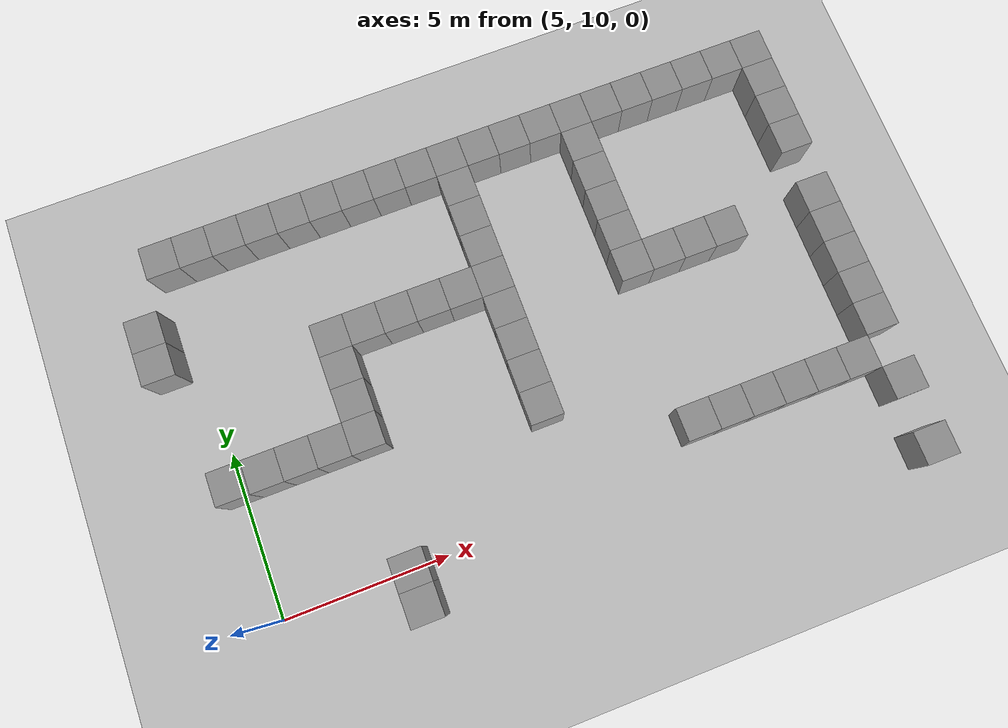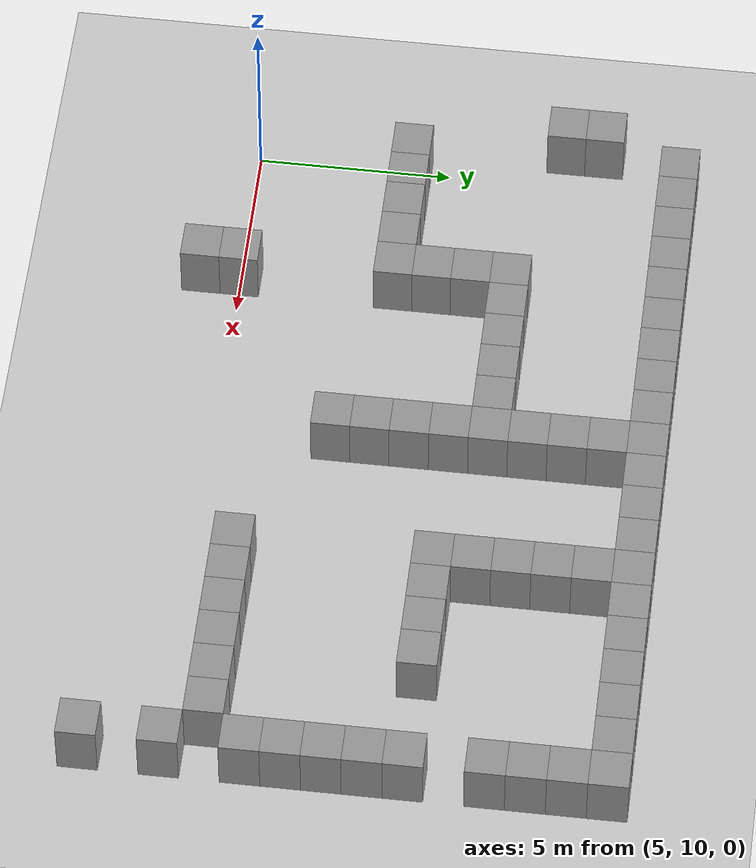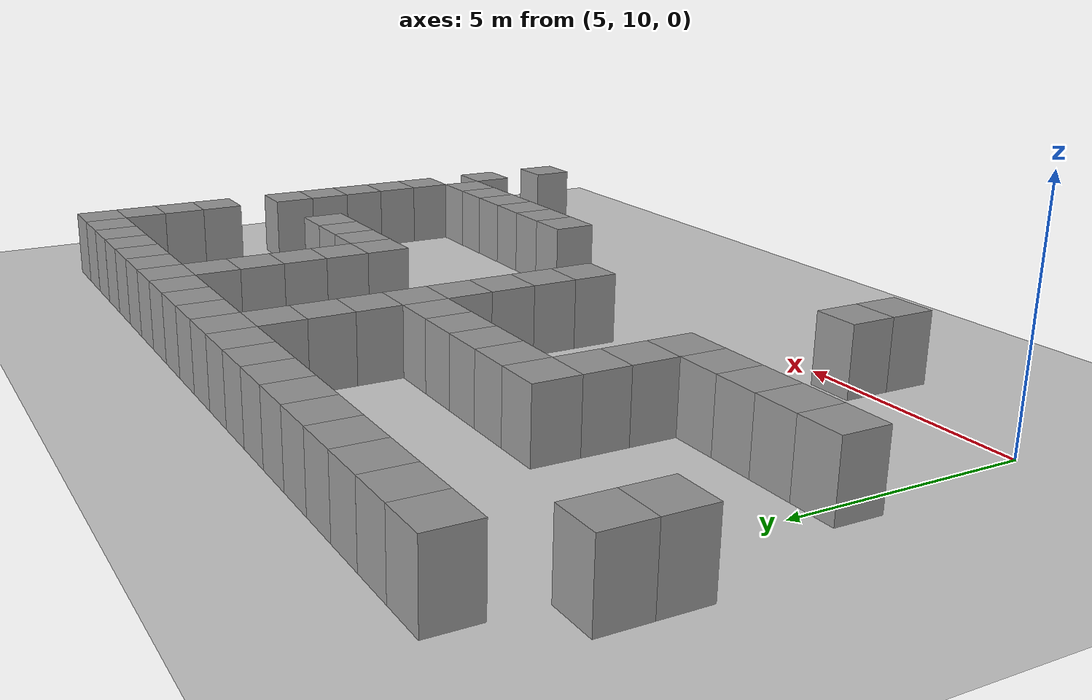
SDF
<sdf version="1.4">
 <world name="default">
  <model name="ground_plane">
   <static>1</static>
   <link name="link">
    <collision name="collision">
     <geometry><plane><normal>0 0 1</normal><size>100 100</size></plane></geometry>
     <surface><friction><ode><mu>100</mu><mu2>50</mu2></ode></friction></surface>
    </collision>
    <visual name="visual">
     <cast_shadows>0</cast_shadows>
     <geometry><plane><normal>0 0 1</normal><size>100 100</size></plane></geometry>
     <material>
      <script><uri>file://media/materials/scripts/gazebo.material</uri><name>Gazebo/Grey</name></script>
     </material>
    </visual>
    <velocity_decay><linear>0</linear><angular>0</angular></velocity_decay>
   </link>
  </model>
  <model name="unit_box_55">
   <pose>9 9.00001 0.5 0 0 -1e-06</pose>
   <static>1</static>
   <link name="link">
    <inertial>
     <mass>1</mass>
     <inertia><ixx>1</ixx><ixy>0</ixy><ixz>0</ixz><iyy>1</iyy><iyz>0</iyz><izz>1</izz></inertia>
    </inertial>
    <collision name="collision"><geometry><box><size>1 1 2</size></box></geometry></collision>
    <visual name="visual">
     <geometry><box><size>1 1 2</size></box></geometry>
     <material>
      <script><uri>file://media/materials/scripts/gazebo.material</uri><name>Gazebo/Grey</name></script>
     </material>
    </visual>
    <velocity_decay><linear>0</linear><angular>0</angular></velocity_decay>
   </link>
   <static>0</static>
  </model>
  <model name="unit_box_56">
   <pose>9 10 0.5 0 0 -2e-06</pose>
   <static>1</static>
   <link name="link">
    <inertial>
     <mass>1</mass>
     <inertia><ixx>1</ixx><ixy>0</ixy><ixz>0</ixz><iyy>1</iyy><iyz>0</iyz><izz>1</izz></inertia>
    </inertial>
    <collision name="collision"><geometry><box><size>1 1 2</size></box></geometry></collision>
    <visual name="visual">
     <geometry><box><size>1 1 2</size></box></geometry>
     <material>
      <script><uri>file://media/materials/scripts/gazebo.material</uri><name>Gazebo/Grey</name></script>
     </material>
    </visual>
    <velocity_decay><linear>0</linear><angular>0</angular></velocity_decay>
   </link>
   <static>0</static>
  </model>
  <model name="unit_box_66">
   <pose>5 14 0.5 0 -0 0</pose>
   <static>1</static>
   <link name="link">
    <inertial>
     <mass>1</mass>
     <inertia><ixx>1</ixx><ixy>0</ixy><ixz>0</ixz><iyy>1</iyy><iyz>0</iyz><izz>1</izz></inertia>
    </inertial>
    <collision name="collision"><geometry><box><size>1 1 2</size></box></geometry></collision>
    <visual name="visual">
     <geometry><box><size>1 1 2</size></box></geometry>
     <material>
      <script><uri>file://media/materials/scripts/gazebo.material</uri><name>Gazebo/Grey</name></script>
     </material>
    </visual>
    <velocity_decay><linear>0</linear><angular>0</angular></velocity_decay>
   </link>
   <static>0</static>
  </model>
  <model name="unit_box_86">
   <pose>6 14 0.5 0 -0 1e-06</pose>
   <static>1</static>
   <link name="link">
    <inertial>
     <mass>1</mass>
     <inertia><ixx>1</ixx><ixy>0</ixy><ixz>0</ixz><iyy>1</iyy><iyz>0</iyz><izz>1</izz></inertia>
    </inertial>
    <collision name="collision"><geometry><box><size>1 1 2</size></box></geometry></collision>
    <visual name="visual">
     <geometry><box><size>1 1 2</size></box></geometry>
     <material>
      <script><uri>file://media/materials/scripts/gazebo.material</uri><name>Gazebo/Grey</name></script>
     </material>
    </visual>
    <velocity_decay><linear>0</linear><angular>0</angular></velocity_decay>
   </link>
   <static>0</static>
  </model>
  <model name="unit_box_87">
   <pose>7 14 0.5 0 -0 1e-06</pose>
   <static>1</static>
   <link name="link">
    <inertial>
     <mass>1</mass>
     <inertia><ixx>1</ixx><ixy>0</ixy><ixz>0</ixz><iyy>1</iyy><iyz>0</iyz><izz>1</izz></inertia>
    </inertial>
    <collision name="collision"><geometry><box><size>1 1 2</size></box></geometry></collision>
    <visual name="visual">
     <geometry><box><size>1 1 2</size></box></geometry>
     <material>
      <script><uri>file://media/materials/scripts/gazebo.material</uri><name>Gazebo/Grey</name></script>
     </material>
    </visual>
    <velocity_decay><linear>0</linear><angular>0</angular></velocity_decay>
   </link>
   <static>0</static>
  </model>
  <model name="unit_box_88">
   <pose>8 14 0.5 0 -0 0</pose>
   <static>1</static>
   <link name="link">
    <inertial>
     <mass>1</mass>
     <inertia><ixx>1</ixx><ixy>0</ixy><ixz>0</ixz><iyy>1</iyy><iyz>0</iyz><izz>1</izz></inertia>
    </inertial>
    <collision name="collision"><geometry><box><size>1 1 2</size></box></geometry></collision>
    <visual name="visual">
     <geometry><box><size>1 1 2</size></box></geometry>
     <material>
      <script><uri>file://media/materials/scripts/gazebo.material</uri><name>Gazebo/Grey</name></script>
     </material>
    </visual>
    <velocity_decay><linear>0</linear><angular>0</angular></velocity_decay>
   </link>
   <static>0</static>
  </model>
  <model name="unit_box_89">
   <pose>9 14 0.5 0 -0 0</pose>
   <static>1</static>
   <link name="link">
    <inertial>
     <mass>1</mass>
     <inertia><ixx>1</ixx><ixy>0</ixy><ixz>0</ixz><iyy>1</iyy><iyz>0</iyz><izz>1</izz></inertia>
    </inertial>
    <collision name="collision"><geometry><box><size>1 1 2</size></box></geometry></collision>
    <visual name="visual">
     <geometry><box><size>1 1 2</size></box></geometry>
     <material>
      <script><uri>file://media/materials/scripts/gazebo.material</uri><name>Gazebo/Grey</name></script>
     </material>
    </visual>
    <velocity_decay><linear>0</linear><angular>0</angular></velocity_decay>
   </link>
   <static>0</static>
  </model>
  <model name="unit_box_93">
   <pose>9.00001 15 0.5 0 0 -4e-06</pose>
   <static>1</static>
   <link name="link">
    <inertial>
     <mass>1</mass>
     <inertia><ixx>1</ixx><ixy>0</ixy><ixz>0</ixz><iyy>1</iyy><iyz>0</iyz><izz>1</izz></inertia>
    </inertial>
    <collision name="collision"><geometry><box><size>1 1 2</size></box></geometry></collision>
    <visual name="visual">
     <geometry><box><size>1 1 2</size></box></geometry>
     <material>
      <script><uri>file://media/materials/scripts/gazebo.material</uri><name>Gazebo/Grey</name></script>
     </material>
    </visual>
    <velocity_decay><linear>0</linear><angular>0</angular></velocity_decay>
   </link>
   <static>0</static>
  </model>
  <model name="unit_box_94">
   <pose>9 16 0.5 0 0 -4e-06</pose>
   <static>1</static>
   <link name="link">
    <inertial>
     <mass>1</mass>
     <inertia><ixx>1</ixx><ixy>0</ixy><ixz>0</ixz><iyy>1</iyy><iyz>0</iyz><izz>1</izz></inertia>
    </inertial>
    <collision name="collision"><geometry><box><size>1 1 2</size></box></geometry></collision>
    <visual name="visual">
     <geometry><box><size>1 1 2</size></box></geometry>
     <material>
      <script><uri>file://media/materials/scripts/gazebo.material</uri><name>Gazebo/Grey</name></script>
     </material>
    </visual>
    <velocity_decay><linear>0</linear><angular>0</angular></velocity_decay>
   </link>
   <static>0</static>
  </model>
  <model name="unit_box_95">
   <pose>9 17 0.5 0 0 -3e-06</pose>
   <static>1</static>
   <link name="link">
    <inertial>
     <mass>1</mass>
     <inertia><ixx>1</ixx><ixy>0</ixy><ixz>0</ixz><iyy>1</iyy><iyz>0</iyz><izz>1</izz></inertia>
    </inertial>
    <collision name="collision"><geometry><box><size>1 1 2</size></box></geometry></collision>
    <visual name="visual">
     <geometry><box><size>1 1 2</size></box></geometry>
     <material>
      <script><uri>file://media/materials/scripts/gazebo.material</uri><name>Gazebo/Grey</name></script>
     </material>
    </visual>
    <velocity_decay><linear>0</linear><angular>0</angular></velocity_decay>
   </link>
   <static>0</static>
  </model>
  <model name="unit_box_108">
   <pose>5 21 0.5 0 -0 3e-06</pose>
   <static>1</static>
   <link name="link">
    <inertial>
     <mass>1</mass>
     <inertia><ixx>1</ixx><ixy>0</ixy><ixz>0</ixz><iyy>1</iyy><iyz>0</iyz><izz>1</izz></inertia>
    </inertial>
    <collision name="collision"><geometry><box><size>1 1 2</size></box></geometry></collision>
    <visual name="visual">
     <geometry><box><size>1 1 2</size></box></geometry>
     <material>
      <script><uri>file://media/materials/scripts/gazebo.material</uri><name>Gazebo/Grey</name></script>
     </material>
    </visual>
    <velocity_decay><linear>0</linear><angular>0</angular></velocity_decay>
   </link>
   <static>0</static>
  </model>
  <model name="unit_box_109">
   <pose>6 20.9999 0.5 0 -0 3e-06</pose>
   <static>1</static>
   <link name="link">
    <inertial>
     <mass>1</mass>
     <inertia><ixx>1</ixx><ixy>0</ixy><ixz>0</ixz><iyy>1</iyy><iyz>0</iyz><izz>1</izz></inertia>
    </inertial>
    <collision name="collision"><geometry><box><size>1 1 2</size></box></geometry></collision>
    <visual name="visual">
     <geometry><box><size>1 1 2</size></box></geometry>
     <material>
      <script><uri>file://media/materials/scripts/gazebo.material</uri><name>Gazebo/Grey</name></script>
     </material>
    </visual>
    <velocity_decay><linear>0</linear><angular>0</angular></velocity_decay>
   </link>
   <static>0</static>
  </model>
  <model name="unit_box_110">
   <pose>7 21 0.5 0 -0 4e-06</pose>
   <static>1</static>
   <link name="link">
    <inertial>
     <mass>1</mass>
     <inertia><ixx>1</ixx><ixy>0</ixy><ixz>0</ixz><iyy>1</iyy><iyz>0</iyz><izz>1</izz></inertia>
    </inertial>
    <collision name="collision"><geometry><box><size>1 1 2</size></box></geometry></collision>
    <visual name="visual">
     <geometry><box><size>1 1 2</size></box></geometry>
     <material>
      <script><uri>file://media/materials/scripts/gazebo.material</uri><name>Gazebo/Grey</name></script>
     </material>
    </visual>
    <velocity_decay><linear>0</linear><angular>0</angular></velocity_decay>
   </link>
   <static>0</static>
  </model>
  <model name="unit_box_111">
   <pose>8 21 0.5 0 -0 3e-06</pose>
   <static>1</static>
   <link name="link">
    <inertial>
     <mass>1</mass>
     <inertia><ixx>1</ixx><ixy>0</ixy><ixz>0</ixz><iyy>1</iyy><iyz>0</iyz><izz>1</izz></inertia>
    </inertial>
    <collision name="collision"><geometry><box><size>1 1 2</size></box></geometry></collision>
    <visual name="visual">
     <geometry><box><size>1 1 2</size></box></geometry>
     <material>
      <script><uri>file://media/materials/scripts/gazebo.material</uri><name>Gazebo/Grey</name></script>
     </material>
    </visual>
    <velocity_decay><linear>0</linear><angular>0</angular></velocity_decay>
   </link>
   <static>0</static>
  </model>
  <model name="unit_box_112">
   <pose>9 21 0.5 0 -0 3e-06</pose>
   <static>1</static>
   <link name="link">
    <inertial>
     <mass>1</mass>
     <inertia><ixx>1</ixx><ixy>0</ixy><ixz>0</ixz><iyy>1</iyy><iyz>0</iyz><izz>1</izz></inertia>
    </inertial>
    <collision name="collision"><geometry><box><size>1 1 2</size></box></geometry></collision>
    <visual name="visual">
     <geometry><box><size>1 1 2</size></box></geometry>
     <material>
      <script><uri>file://media/materials/scripts/gazebo.material</uri><name>Gazebo/Grey</name></script>
     </material>
    </visual>
    <velocity_decay><linear>0</linear><angular>0</angular></velocity_decay>
   </link>
   <static>0</static>
  </model>
  <model name="unit_box_113">
   <pose>10 21 0.5 0 -0 1e-06</pose>
   <static>1</static>
   <link name="link">
    <inertial>
     <mass>1</mass>
     <inertia><ixx>1</ixx><ixy>0</ixy><ixz>0</ixz><iyy>1</iyy><iyz>0</iyz><izz>1</izz></inertia>
    </inertial>
    <collision name="collision"><geometry><box><size>1 1 2</size></box></geometry></collision>
    <visual name="visual">
     <geometry><box><size>1 1 2</size></box></geometry>
     <material>
      <script><uri>file://media/materials/scripts/gazebo.material</uri><name>Gazebo/Grey</name></script>
     </material>
    </visual>
    <velocity_decay><linear>0</linear><angular>0</angular></velocity_decay>
   </link>
   <static>0</static>
  </model>
  <model name="unit_box_114">
   <pose>11 21 0.5 0 -0 1e-06</pose>
   <static>1</static>
   <link name="link">
    <inertial>
     <mass>1</mass>
     <inertia><ixx>1</ixx><ixy>0</ixy><ixz>0</ixz><iyy>1</iyy><iyz>0</iyz><izz>1</izz></inertia>
    </inertial>
    <collision name="collision"><geometry><box><size>1 1 2</size></box></geometry></collision>
    <visual name="visual">
     <geometry><box><size>1 1 2</size></box></geometry>
     <material>
      <script><uri>file://media/materials/scripts/gazebo.material</uri><name>Gazebo/Grey</name></script>
     </material>
    </visual>
    <velocity_decay><linear>0</linear><angular>0</angular></velocity_decay>
   </link>
   <static>0</static>
  </model>
  <model name="unit_box_115">
   <pose>12 21 0.5 0 0 -2e-06</pose>
   <static>1</static>
   <link name="link">
    <inertial>
     <mass>1</mass>
     <inertia><ixx>1</ixx><ixy>0</ixy><ixz>0</ixz><iyy>1</iyy><iyz>0</iyz><izz>1</izz></inertia>
    </inertial>
    <collision name="collision"><geometry><box><size>1 1 2</size></box></geometry></collision>
    <visual name="visual">
     <geometry><box><size>1 1 2</size></box></geometry>
     <material>
      <script><uri>file://media/materials/scripts/gazebo.material</uri><name>Gazebo/Grey</name></script>
     </material>
    </visual>
    <velocity_decay><linear>0</linear><angular>0</angular></velocity_decay>
   </link>
   <static>0</static>
  </model>
  <model name="unit_box_116">
   <pose>13 21 0.5 0 0 -2e-06</pose>
   <static>1</static>
   <link name="link">
    <inertial>
     <mass>1</mass>
     <inertia><ixx>1</ixx><ixy>0</ixy><ixz>0</ixz><iyy>1</iyy><iyz>0</iyz><izz>1</izz></inertia>
    </inertial>
    <collision name="collision"><geometry><box><size>1 1 2</size></box></geometry></collision>
    <visual name="visual">
     <geometry><box><size>1 1 2</size></box></geometry>
     <material>
      <script><uri>file://media/materials/scripts/gazebo.material</uri><name>Gazebo/Grey</name></script>
     </material>
    </visual>
    <velocity_decay><linear>0</linear><angular>0</angular></velocity_decay>
   </link>
   <static>0</static>
  </model>
  <model name="unit_box_117">
   <pose>10 17 0.5 0 0 -2e-06</pose>
   <static>1</static>
   <link name="link">
    <inertial>
     <mass>1</mass>
     <inertia><ixx>1</ixx><ixy>0</ixy><ixz>0</ixz><iyy>1</iyy><iyz>0</iyz><izz>1</izz></inertia>
    </inertial>
    <collision name="collision"><geometry><box><size>1 1 2</size></box></geometry></collision>
    <visual name="visual">
     <geometry><box><size>1 1 2</size></box></geometry>
     <material>
      <script><uri>file://media/materials/scripts/gazebo.material</uri><name>Gazebo/Grey</name></script>
     </material>
    </visual>
    <velocity_decay><linear>0</linear><angular>0</angular></velocity_decay>
   </link>
   <static>0</static>
  </model>
  <model name="unit_box_118">
   <pose>11 17 0.5 0 0 -1e-06</pose>
   <static>1</static>
   <link name="link">
    <inertial>
     <mass>1</mass>
     <inertia><ixx>1</ixx><ixy>0</ixy><ixz>0</ixz><iyy>1</iyy><iyz>0</iyz><izz>1</izz></inertia>
    </inertial>
    <collision name="collision"><geometry><box><size>1 1 2</size></box></geometry></collision>
    <visual name="visual">
     <geometry><box><size>1 1 2</size></box></geometry>
     <material>
      <script><uri>file://media/materials/scripts/gazebo.material</uri><name>Gazebo/Grey</name></script>
     </material>
    </visual>
    <velocity_decay><linear>0</linear><angular>0</angular></velocity_decay>
   </link>
   <static>0</static>
  </model>
  <model name="unit_box_119">
   <pose>12 17 0.5 0 0 -2e-06</pose>
   <static>1</static>
   <link name="link">
    <inertial>
     <mass>1</mass>
     <inertia><ixx>1</ixx><ixy>0</ixy><ixz>0</ixz><iyy>1</iyy><iyz>0</iyz><izz>1</izz></inertia>
    </inertial>
    <collision name="collision"><geometry><box><size>1 1 2</size></box></geometry></collision>
    <visual name="visual">
     <geometry><box><size>1 1 2</size></box></geometry>
     <material>
      <script><uri>file://media/materials/scripts/gazebo.material</uri><name>Gazebo/Grey</name></script>
     </material>
    </visual>
    <velocity_decay><linear>0</linear><angular>0</angular></velocity_decay>
   </link>
   <static>0</static>
  </model>
  <model name="unit_box_120">
   <pose>13 17 0.5 0 0 -2e-06</pose>
   <static>1</static>
   <link name="link">
    <inertial>
     <mass>1</mass>
     <inertia><ixx>1</ixx><ixy>0</ixy><ixz>0</ixz><iyy>1</iyy><iyz>0</iyz><izz>1</izz></inertia>
    </inertial>
    <collision name="collision"><geometry><box><size>1 1 2</size></box></geometry></collision>
    <visual name="visual">
     <geometry><box><size>1 1 2</size></box></geometry>
     <material>
      <script><uri>file://media/materials/scripts/gazebo.material</uri><name>Gazebo/Grey</name></script>
     </material>
    </visual>
    <velocity_decay><linear>0</linear><angular>0</angular></velocity_decay>
   </link>
   <static>0</static>
  </model>
  <model name="unit_box_121">
   <pose>14 21 0.5 0 0 -2e-06</pose>
   <static>1</static>
   <link name="link">
    <inertial>
     <mass>1</mass>
     <inertia><ixx>1</ixx><ixy>0</ixy><ixz>0</ixz><iyy>1</iyy><iyz>0</iyz><izz>1</izz></inertia>
    </inertial>
    <collision name="collision"><geometry><box><size>1 1 2</size></box></geometry></collision>
    <visual name="visual">
     <geometry><box><size>1 1 2</size></box></geometry>
     <material>
      <script><uri>file://media/materials/scripts/gazebo.material</uri><name>Gazebo/Grey</name></script>
     </material>
    </visual>
    <velocity_decay><linear>0</linear><angular>0</angular></velocity_decay>
   </link>
   <static>0</static>
  </model>
  <model name="unit_box_122">
   <pose>14 20 0.5 0 0 -4e-06</pose>
   <static>1</static>
   <link name="link">
    <inertial>
     <mass>1</mass>
     <inertia><ixx>1</ixx><ixy>0</ixy><ixz>0</ixz><iyy>1</iyy><iyz>0</iyz><izz>1</izz></inertia>
    </inertial>
    <collision name="collision"><geometry><box><size>1 1 2</size></box></geometry></collision>
    <visual name="visual">
     <geometry><box><size>1 1 2</size></box></geometry>
     <material>
      <script><uri>file://media/materials/scripts/gazebo.material</uri><name>Gazebo/Grey</name></script>
     </material>
    </visual>
    <velocity_decay><linear>0</linear><angular>0</angular></velocity_decay>
   </link>
   <static>0</static>
  </model>
  <model name="unit_box_123">
   <pose>14 19 0.5 0 0 -4e-06</pose>
   <static>1</static>
   <link name="link">
    <inertial>
     <mass>1</mass>
     <inertia><ixx>1</ixx><ixy>0</ixy><ixz>0</ixz><iyy>1</iyy><iyz>0</iyz><izz>1</izz></inertia>
    </inertial>
    <collision name="collision"><geometry><box><size>1 1 2</size></box></geometry></collision>
    <visual name="visual">
     <geometry><box><size>1 1 2</size></box></geometry>
     <material>
      <script><uri>file://media/materials/scripts/gazebo.material</uri><name>Gazebo/Grey</name></script>
     </material>
    </visual>
    <velocity_decay><linear>0</linear><angular>0</angular></velocity_decay>
   </link>
   <static>0</static>
  </model>
  <model name="unit_box_124">
   <pose>14 18 0.5 0 0 -4e-06</pose>
   <static>1</static>
   <link name="link">
    <inertial>
     <mass>1</mass>
     <inertia><ixx>1</ixx><ixy>0</ixy><ixz>0</ixz><iyy>1</iyy><iyz>0</iyz><izz>1</izz></inertia>
    </inertial>
    <collision name="collision"><geometry><box><size>1 1 2</size></box></geometry></collision>
    <visual name="visual">
     <geometry><box><size>1 1 2</size></box></geometry>
     <material>
      <script><uri>file://media/materials/scripts/gazebo.material</uri><name>Gazebo/Grey</name></script>
     </material>
    </visual>
    <velocity_decay><linear>0</linear><angular>0</angular></velocity_decay>
   </link>
   <static>0</static>
  </model>
  <model name="unit_box_125">
   <pose>14 17 0.5 0 -0 1e-06</pose>
   <static>1</static>
   <link name="link">
    <inertial>
     <mass>1</mass>
     <inertia><ixx>1</ixx><ixy>0</ixy><ixz>0</ixz><iyy>1</iyy><iyz>0</iyz><izz>1</izz></inertia>
    </inertial>
    <collision name="collision"><geometry><box><size>1 1 2</size></box></geometry></collision>
    <visual name="visual">
     <geometry><box><size>1 1 2</size></box></geometry>
     <material>
      <script><uri>file://media/materials/scripts/gazebo.material</uri><name>Gazebo/Grey</name></script>
     </material>
    </visual>
    <velocity_decay><linear>0</linear><angular>0</angular></velocity_decay>
   </link>
   <static>0</static>
  </model>
  <model name="unit_box_127">
   <pose>4 19 0.5 0 -0 3e-06</pose>
   <static>1</static>
   <link name="link">
    <inertial>
     <mass>1</mass>
     <inertia><ixx>1</ixx><ixy>0</ixy><ixz>0</ixz><iyy>1</iyy><iyz>0</iyz><izz>1</izz></inertia>
    </inertial>
    <collision name="collision"><geometry><box><size>1 1 2</size></box></geometry></collision>
    <visual name="visual">
     <geometry><box><size>1 1 2</size></box></geometry>
     <material>
      <script><uri>file://media/materials/scripts/gazebo.material</uri><name>Gazebo/Grey</name></script>
     </material>
    </visual>
    <velocity_decay><linear>0</linear><angular>0</angular></velocity_decay>
   </link>
   <static>0</static>
  </model>
  <model name="unit_box_128">
   <pose>4 18 0.5 0 -0 1e-06</pose>
   <static>1</static>
   <link name="link">
    <inertial>
     <mass>1</mass>
     <inertia><ixx>1</ixx><ixy>0</ixy><ixz>0</ixz><iyy>1</iyy><iyz>0</iyz><izz>1</izz></inertia>
    </inertial>
    <collision name="collision"><geometry><box><size>1 1 2</size></box></geometry></collision>
    <visual name="visual">
     <geometry><box><size>1 1 2</size></box></geometry>
     <material>
      <script><uri>file://media/materials/scripts/gazebo.material</uri><name>Gazebo/Grey</name></script>
     </material>
    </visual>
    <velocity_decay><linear>0</linear><angular>0</angular></velocity_decay>
   </link>
   <static>0</static>
  </model>
  <model name="unit_box_130">
   <pose>14 16 0.5 0 -0 2e-06</pose>
   <static>1</static>
   <link name="link">
    <inertial>
     <mass>1</mass>
     <inertia><ixx>1</ixx><ixy>0</ixy><ixz>0</ixz><iyy>1</iyy><iyz>0</iyz><izz>1</izz></inertia>
    </inertial>
    <collision name="collision"><geometry><box><size>1 1 2</size></box></geometry></collision>
    <visual name="visual">
     <geometry><box><size>1 1 2</size></box></geometry>
     <material>
      <script><uri>file://media/materials/scripts/gazebo.material</uri><name>Gazebo/Grey</name></script>
     </material>
    </visual>
    <velocity_decay><linear>0</linear><angular>0</angular></velocity_decay>
   </link>
   <static>0</static>
  </model>
  <model name="unit_box_131">
   <pose>14 15 0.5 0 -0 1e-06</pose>
   <static>1</static>
   <link name="link">
    <inertial>
     <mass>1</mass>
     <inertia><ixx>1</ixx><ixy>0</ixy><ixz>0</ixz><iyy>1</iyy><iyz>0</iyz><izz>1</izz></inertia>
    </inertial>
    <collision name="collision"><geometry><box><size>1 1 2</size></box></geometry></collision>
    <visual name="visual">
     <geometry><box><size>1 1 2</size></box></geometry>
     <material>
      <script><uri>file://media/materials/scripts/gazebo.material</uri><name>Gazebo/Grey</name></script>
     </material>
    </visual>
    <velocity_decay><linear>0</linear><angular>0</angular></velocity_decay>
   </link>
   <static>0</static>
  </model>
  <model name="unit_box_132">
   <pose>14 14 0.5 0 -0 1e-06</pose>
   <static>1</static>
   <link name="link">
    <inertial>
     <mass>1</mass>
     <inertia><ixx>1</ixx><ixy>0</ixy><ixz>0</ixz><iyy>1</iyy><iyz>0</iyz><izz>1</izz></inertia>
    </inertial>
    <collision name="collision"><geometry><box><size>1 1 2</size></box></geometry></collision>
    <visual name="visual">
     <geometry><box><size>1 1 2</size></box></geometry>
     <material>
      <script><uri>file://media/materials/scripts/gazebo.material</uri><name>Gazebo/Grey</name></script>
     </material>
    </visual>
    <velocity_decay><linear>0</linear><angular>0</angular></velocity_decay>
   </link>
   <static>0</static>
  </model>
  <model name="unit_box_133">
   <pose>14 13 0.5 0 -0 1e-06</pose>
   <static>1</static>
   <link name="link">
    <inertial>
     <mass>1</mass>
     <inertia><ixx>1</ixx><ixy>0</ixy><ixz>0</ixz><iyy>1</iyy><iyz>0</iyz><izz>1</izz></inertia>
    </inertial>
    <collision name="collision"><geometry><box><size>1 1 2</size></box></geometry></collision>
    <visual name="visual">
     <geometry><box><size>1 1 2</size></box></geometry>
     <material>
      <script><uri>file://media/materials/scripts/gazebo.material</uri><name>Gazebo/Grey</name></script>
     </material>
    </visual>
    <velocity_decay><linear>0</linear><angular>0</angular></velocity_decay>
   </link>
   <static>0</static>
  </model>
  <model name="unit_box_134">
   <pose>15 21 0.5 0 -0 1e-06</pose>
   <static>1</static>
   <link name="link">
    <inertial>
     <mass>1</mass>
     <inertia><ixx>1</ixx><ixy>0</ixy><ixz>0</ixz><iyy>1</iyy><iyz>0</iyz><izz>1</izz></inertia>
    </inertial>
    <collision name="collision"><geometry><box><size>1 1 2</size></box></geometry></collision>
    <visual name="visual">
     <geometry><box><size>1 1 2</size></box></geometry>
     <material>
      <script><uri>file://media/materials/scripts/gazebo.material</uri><name>Gazebo/Grey</name></script>
     </material>
    </visual>
    <velocity_decay><linear>0</linear><angular>0</angular></velocity_decay>
   </link>
   <static>0</static>
  </model>
  <model name="unit_box_135">
   <pose>16 21 0.5 0 -0 1e-06</pose>
   <static>1</static>
   <link name="link">
    <inertial>
     <mass>1</mass>
     <inertia><ixx>1</ixx><ixy>0</ixy><ixz>0</ixz><iyy>1</iyy><iyz>0</iyz><izz>1</izz></inertia>
    </inertial>
    <collision name="collision"><geometry><box><size>1 1 2</size></box></geometry></collision>
    <visual name="visual">
     <geometry><box><size>1 1 2</size></box></geometry>
     <material>
      <script><uri>file://media/materials/scripts/gazebo.material</uri><name>Gazebo/Grey</name></script>
     </material>
    </visual>
    <velocity_decay><linear>0</linear><angular>0</angular></velocity_decay>
   </link>
   <static>0</static>
  </model>
  <model name="unit_box_136">
   <pose>17 21 0.5 0 -0 3e-06</pose>
   <static>1</static>
   <link name="link">
    <inertial>
     <mass>1</mass>
     <inertia><ixx>1</ixx><ixy>0</ixy><ixz>0</ixz><iyy>1</iyy><iyz>0</iyz><izz>1</izz></inertia>
    </inertial>
    <collision name="collision"><geometry><box><size>1 1 2</size></box></geometry></collision>
    <visual name="visual">
     <geometry><box><size>1 1 2</size></box></geometry>
     <material>
      <script><uri>file://media/materials/scripts/gazebo.material</uri><name>Gazebo/Grey</name></script>
     </material>
    </visual>
    <velocity_decay><linear>0</linear><angular>0</angular></velocity_decay>
   </link>
   <static>0</static>
  </model>
  <model name="unit_box_137">
   <pose>18 21 0.5 0 -0 3e-06</pose>
   <static>1</static>
   <link name="link">
    <inertial>
     <mass>1</mass>
     <inertia><ixx>1</ixx><ixy>0</ixy><ixz>0</ixz><iyy>1</iyy><iyz>0</iyz><izz>1</izz></inertia>
    </inertial>
    <collision name="collision"><geometry><box><size>1 1 2</size></box></geometry></collision>
    <visual name="visual">
     <geometry><box><size>1 1 2</size></box></geometry>
     <material>
      <script><uri>file://media/materials/scripts/gazebo.material</uri><name>Gazebo/Grey</name></script>
     </material>
    </visual>
    <velocity_decay><linear>0</linear><angular>0</angular></velocity_decay>
   </link>
   <static>0</static>
  </model>
  <model name="unit_box_138">
   <pose>18 20 0.5 0 -0 5e-06</pose>
   <static>1</static>
   <link name="link">
    <inertial>
     <mass>1</mass>
     <inertia><ixx>1</ixx><ixy>0</ixy><ixz>0</ixz><iyy>1</iyy><iyz>0</iyz><izz>1</izz></inertia>
    </inertial>
    <collision name="collision"><geometry><box><size>1 1 2</size></box></geometry></collision>
    <visual name="visual">
     <geometry><box><size>1 1 2</size></box></geometry>
     <material>
      <script><uri>file://media/materials/scripts/gazebo.material</uri><name>Gazebo/Grey</name></script>
     </material>
    </visual>
    <velocity_decay><linear>0</linear><angular>0</angular></velocity_decay>
   </link>
   <static>0</static>
  </model>
  <model name="unit_box_139">
   <pose>18 19 0.5 0 -0 3e-06</pose>
   <static>1</static>
   <link name="link">
    <inertial>
     <mass>1</mass>
     <inertia><ixx>1</ixx><ixy>0</ixy><ixz>0</ixz><iyy>1</iyy><iyz>0</iyz><izz>1</izz></inertia>
    </inertial>
    <collision name="collision"><geometry><box><size>1 1 2</size></box></geometry></collision>
    <visual name="visual">
     <geometry><box><size>1 1 2</size></box></geometry>
     <material>
      <script><uri>file://media/materials/scripts/gazebo.material</uri><name>Gazebo/Grey</name></script>
     </material>
    </visual>
    <velocity_decay><linear>0</linear><angular>0</angular></velocity_decay>
   </link>
   <static>0</static>
  </model>
  <model name="unit_box_140">
   <pose>18 18 0.5 0 -0 2e-06</pose>
   <static>1</static>
   <link name="link">
    <inertial>
     <mass>1</mass>
     <inertia><ixx>1</ixx><ixy>0</ixy><ixz>0</ixz><iyy>1</iyy><iyz>0</iyz><izz>1</izz></inertia>
    </inertial>
    <collision name="collision"><geometry><box><size>1 1 2</size></box></geometry></collision>
    <visual name="visual">
     <geometry><box><size>1 1 2</size></box></geometry>
     <material>
      <script><uri>file://media/materials/scripts/gazebo.material</uri><name>Gazebo/Grey</name></script>
     </material>
    </visual>
    <velocity_decay><linear>0</linear><angular>0</angular></velocity_decay>
   </link>
   <static>0</static>
  </model>
  <model name="unit_box_141">
   <pose>18 17 0.5 0 -0 1e-06</pose>
   <static>1</static>
   <link name="link">
    <inertial>
     <mass>1</mass>
     <inertia><ixx>1</ixx><ixy>0</ixy><ixz>0</ixz><iyy>1</iyy><iyz>0</iyz><izz>1</izz></inertia>
    </inertial>
    <collision name="collision"><geometry><box><size>1 1 2</size></box></geometry></collision>
    <visual name="visual">
     <geometry><box><size>1 1 2</size></box></geometry>
     <material>
      <script><uri>file://media/materials/scripts/gazebo.material</uri><name>Gazebo/Grey</name></script>
     </material>
    </visual>
    <velocity_decay><linear>0</linear><angular>0</angular></velocity_decay>
   </link>
   <static>0</static>
  </model>
  <model name="unit_box_142">
   <pose>18 16 0.5 0 -0 1e-06</pose>
   <static>1</static>
   <link name="link">
    <inertial>
     <mass>1</mass>
     <inertia><ixx>1</ixx><ixy>0</ixy><ixz>0</ixz><iyy>1</iyy><iyz>0</iyz><izz>1</izz></inertia>
    </inertial>
    <collision name="collision"><geometry><box><size>1 1 2</size></box></geometry></collision>
    <visual name="visual">
     <geometry><box><size>1 1 2</size></box></geometry>
     <material>
      <script><uri>file://media/materials/scripts/gazebo.material</uri><name>Gazebo/Grey</name></script>
     </material>
    </visual>
    <velocity_decay><linear>0</linear><angular>0</angular></velocity_decay>
   </link>
   <static>0</static>
  </model>
  <model name="unit_box_143">
   <pose>19 16 0.5 0 -0 1e-06</pose>
   <static>1</static>
   <link name="link">
    <inertial>
     <mass>1</mass>
     <inertia><ixx>1</ixx><ixy>0</ixy><ixz>0</ixz><iyy>1</iyy><iyz>0</iyz><izz>1</izz></inertia>
    </inertial>
    <collision name="collision"><geometry><box><size>1 1 2</size></box></geometry></collision>
    <visual name="visual">
     <geometry><box><size>1 1 2</size></box></geometry>
     <material>
      <script><uri>file://media/materials/scripts/gazebo.material</uri><name>Gazebo/Grey</name></script>
     </material>
    </visual>
    <velocity_decay><linear>0</linear><angular>0</angular></velocity_decay>
   </link>
   <static>0</static>
  </model>
  <model name="unit_box_144">
   <pose>20 16 0.5 0 0 -1e-06</pose>
   <static>1</static>
   <link name="link">
    <inertial>
     <mass>1</mass>
     <inertia><ixx>1</ixx><ixy>0</ixy><ixz>0</ixz><iyy>1</iyy><iyz>0</iyz><izz>1</izz></inertia>
    </inertial>
    <collision name="collision"><geometry><box><size>1 1 2</size></box></geometry></collision>
    <visual name="visual">
     <geometry><box><size>1 1 2</size></box></geometry>
     <material>
      <script><uri>file://media/materials/scripts/gazebo.material</uri><name>Gazebo/Grey</name></script>
     </material>
    </visual>
    <velocity_decay><linear>0</linear><angular>0</angular></velocity_decay>
   </link>
   <static>0</static>
  </model>
  <model name="unit_box_145">
   <pose>21 16 0.5 0 0 -1e-06</pose>
   <static>1</static>
   <link name="link">
    <inertial>
     <mass>1</mass>
     <inertia><ixx>1</ixx><ixy>0</ixy><ixz>0</ixz><iyy>1</iyy><iyz>0</iyz><izz>1</izz></inertia>
    </inertial>
    <collision name="collision"><geometry><box><size>1 1 2</size></box></geometry></collision>
    <visual name="visual">
     <geometry><box><size>1 1 2</size></box></geometry>
     <material>
      <script><uri>file://media/materials/scripts/gazebo.material</uri><name>Gazebo/Grey</name></script>
     </material>
    </visual>
    <velocity_decay><linear>0</linear><angular>0</angular></velocity_decay>
   </link>
   <static>0</static>
  </model>
  <model name="unit_box_146">
   <pose>19 21 0.5 0 -0 3e-06</pose>
   <static>1</static>
   <link name="link">
    <inertial>
     <mass>1</mass>
     <inertia><ixx>1</ixx><ixy>0</ixy><ixz>0</ixz><iyy>1</iyy><iyz>0</iyz><izz>1</izz></inertia>
    </inertial>
    <collision name="collision"><geometry><box><size>1 1 2</size></box></geometry></collision>
    <visual name="visual">
     <geometry><box><size>1 1 2</size></box></geometry>
     <material>
      <script><uri>file://media/materials/scripts/gazebo.material</uri><name>Gazebo/Grey</name></script>
     </material>
    </visual>
    <velocity_decay><linear>0</linear><angular>0</angular></velocity_decay>
   </link>
   <static>0</static>
  </model>
  <model name="unit_box_147">
   <pose>20.0003 21 0.5 0 -0 1.4e-05</pose>
   <static>1</static>
   <link name="link">
    <inertial>
     <mass>1</mass>
     <inertia><ixx>1</ixx><ixy>0</ixy><ixz>0</ixz><iyy>1</iyy><iyz>0</iyz><izz>1</izz></inertia>
    </inertial>
    <collision name="collision"><geometry><box><size>1 1 2</size></box></geometry></collision>
    <visual name="visual">
     <geometry><box><size>1 1 2</size></box></geometry>
     <material>
      <script><uri>file://media/materials/scripts/gazebo.material</uri><name>Gazebo/Grey</name></script>
     </material>
    </visual>
    <velocity_decay><linear>0</linear><angular>0</angular></velocity_decay>
   </link>
   <static>0</static>
  </model>
  <model name="unit_box_148">
   <pose>21.0003 21 0.5 0 -0 3.3e-05</pose>
   <static>1</static>
   <link name="link">
    <inertial>
     <mass>1</mass>
     <inertia><ixx>1</ixx><ixy>0</ixy><ixz>0</ixz><iyy>1</iyy><iyz>0</iyz><izz>1</izz></inertia>
    </inertial>
    <collision name="collision"><geometry><box><size>1 1 2</size></box></geometry></collision>
    <visual name="visual">
     <geometry><box><size>1 1 2</size></box></geometry>
     <material>
      <script><uri>file://media/materials/scripts/gazebo.material</uri><name>Gazebo/Grey</name></script>
     </material>
    </visual>
    <velocity_decay><linear>0</linear><angular>0</angular></velocity_decay>
   </link>
   <static>0</static>
  </model>
  <model name="unit_box_150">
   <pose>22.0003 21.0001 0.5 0 -0 7.3e-05</pose>
   <static>1</static>
   <link name="link">
    <inertial>
     <mass>1</mass>
     <inertia><ixx>1</ixx><ixy>0</ixy><ixz>0</ixz><iyy>1</iyy><iyz>0</iyz><izz>1</izz></inertia>
    </inertial>
    <collision name="collision"><geometry><box><size>1 1 2</size></box></geometry></collision>
    <visual name="visual">
     <geometry><box><size>1 1 2</size></box></geometry>
     <material>
      <script><uri>file://media/materials/scripts/gazebo.material</uri><name>Gazebo/Grey</name></script>
     </material>
    </visual>
    <velocity_decay><linear>0</linear><angular>0</angular></velocity_decay>
   </link>
   <static>0</static>
  </model>
  <model name="unit_box_151">
   <pose>23.0004 21.0004 0.5 0 -0 0.000111</pose>
   <static>1</static>
   <link name="link">
    <inertial>
     <mass>1</mass>
     <inertia><ixx>1</ixx><ixy>0</ixy><ixz>0</ixz><iyy>1</iyy><iyz>0</iyz><izz>1</izz></inertia>
    </inertial>
    <collision name="collision"><geometry><box><size>1 1 2</size></box></geometry></collision>
    <visual name="visual">
     <geometry><box><size>1 1 2</size></box></geometry>
     <material>
      <script><uri>file://media/materials/scripts/gazebo.material</uri><name>Gazebo/Grey</name></script>
     </material>
    </visual>
    <velocity_decay><linear>0</linear><angular>0</angular></velocity_decay>
   </link>
   <static>0</static>
  </model>
  <model name="unit_box_152">
   <pose>24.0004 21.0005 0.5 0 -0 4.7e-05</pose>
   <static>1</static>
   <link name="link">
    <inertial>
     <mass>1</mass>
     <inertia><ixx>1</ixx><ixy>0</ixy><ixz>0</ixz><iyy>1</iyy><iyz>0</iyz><izz>1</izz></inertia>
    </inertial>
    <collision name="collision"><geometry><box><size>1 1 2</size></box></geometry></collision>
    <visual name="visual">
     <geometry><box><size>1 1 2</size></box></geometry>
     <material>
      <script><uri>file://media/materials/scripts/gazebo.material</uri><name>Gazebo/Grey</name></script>
     </material>
    </visual>
    <velocity_decay><linear>0</linear><angular>0</angular></velocity_decay>
   </link>
   <static>0</static>
  </model>
  <model name="unit_box_153">
   <pose>24.0001 20.0005 0.5 0 -0 2.5e-05</pose>
   <static>1</static>
   <link name="link">
    <inertial>
     <mass>1</mass>
     <inertia><ixx>1</ixx><ixy>0</ixy><ixz>0</ixz><iyy>1</iyy><iyz>0</iyz><izz>1</izz></inertia>
    </inertial>
    <collision name="collision"><geometry><box><size>1 1 2</size></box></geometry></collision>
    <visual name="visual">
     <geometry><box><size>1 1 2</size></box></geometry>
     <material>
      <script><uri>file://media/materials/scripts/gazebo.material</uri><name>Gazebo/Grey</name></script>
     </material>
    </visual>
    <velocity_decay><linear>0</linear><angular>0</angular></velocity_decay>
   </link>
   <static>0</static>
  </model>
  <model name="unit_box_154">
   <pose>24.0001 19.0005 0.5 0 -0 1.7e-05</pose>
   <static>1</static>
   <link name="link">
    <inertial>
     <mass>1</mass>
     <inertia><ixx>1</ixx><ixy>0</ixy><ixz>0</ixz><iyy>1</iyy><iyz>0</iyz><izz>1</izz></inertia>
    </inertial>
    <collision name="collision"><geometry><box><size>1 1 2</size></box></geometry></collision>
    <visual name="visual">
     <geometry><box><size>1 1 2</size></box></geometry>
     <material>
      <script><uri>file://media/materials/scripts/gazebo.material</uri><name>Gazebo/Grey</name></script>
     </material>
    </visual>
    <velocity_decay><linear>0</linear><angular>0</angular></velocity_decay>
   </link>
   <static>0</static>
  </model>
  <model name="unit_box_155">
   <pose>24.0001 18.0005 0.5 0 -0 1.3e-05</pose>
   <static>1</static>
   <link name="link">
    <inertial>
     <mass>1</mass>
     <inertia><ixx>1</ixx><ixy>0</ixy><ixz>0</ixz><iyy>1</iyy><iyz>0</iyz><izz>1</izz></inertia>
    </inertial>
    <collision name="collision"><geometry><box><size>1 1 2</size></box></geometry></collision>
    <visual name="visual">
     <geometry><box><size>1 1 2</size></box></geometry>
     <material>
      <script><uri>file://media/materials/scripts/gazebo.material</uri><name>Gazebo/Grey</name></script>
     </material>
    </visual>
    <velocity_decay><linear>0</linear><angular>0</angular></velocity_decay>
   </link>
   <static>0</static>
  </model>
  <model name="unit_box_157">
   <pose>24.0002 16.0005 0.5 0 -0 1.5e-05</pose>
   <static>1</static>
   <link name="link">
    <inertial>
     <mass>1</mass>
     <inertia><ixx>1</ixx><ixy>0</ixy><ixz>0</ixz><iyy>1</iyy><iyz>0</iyz><izz>1</izz></inertia>
    </inertial>
    <collision name="collision"><geometry><box><size>1 1 2</size></box></geometry></collision>
    <visual name="visual">
     <geometry><box><size>1 1 2</size></box></geometry>
     <material>
      <script><uri>file://media/materials/scripts/gazebo.material</uri><name>Gazebo/Grey</name></script>
     </material>
    </visual>
    <velocity_decay><linear>0</linear><angular>0</angular></velocity_decay>
   </link>
   <static>0</static>
  </model>
  <model name="unit_box_158">
   <pose>24.0001 15.0005 0.5 0 -0 1.7e-05</pose>
   <static>1</static>
   <link name="link">
    <inertial>
     <mass>1</mass>
     <inertia><ixx>1</ixx><ixy>0</ixy><ixz>0</ixz><iyy>1</iyy><iyz>0</iyz><izz>1</izz></inertia>
    </inertial>
    <collision name="collision"><geometry><box><size>1 1 2</size></box></geometry></collision>
    <visual name="visual">
     <geometry><box><size>1 1 2</size></box></geometry>
     <material>
      <script><uri>file://media/materials/scripts/gazebo.material</uri><name>Gazebo/Grey</name></script>
     </material>
    </visual>
    <velocity_decay><linear>0</linear><angular>0</angular></velocity_decay>
   </link>
   <static>0</static>
  </model>
  <model name="unit_box_159">
   <pose>24 14.0005 0.5 0 -0 2e-05</pose>
   <static>1</static>
   <link name="link">
    <inertial>
     <mass>1</mass>
     <inertia><ixx>1</ixx><ixy>0</ixy><ixz>0</ixz><iyy>1</iyy><iyz>0</iyz><izz>1</izz></inertia>
    </inertial>
    <collision name="collision"><geometry><box><size>1 1 2</size></box></geometry></collision>
    <visual name="visual">
     <geometry><box><size>1 1 2</size></box></geometry>
     <material>
      <script><uri>file://media/materials/scripts/gazebo.material</uri><name>Gazebo/Grey</name></script>
     </material>
    </visual>
    <velocity_decay><linear>0</linear><angular>0</angular></velocity_decay>
   </link>
   <static>0</static>
  </model>
  <model name="unit_box_160">
   <pose>24 13.0005 0.5 0 -0 2.1e-05</pose>
   <static>1</static>
   <link name="link">
    <inertial>
     <mass>1</mass>
     <inertia><ixx>1</ixx><ixy>0</ixy><ixz>0</ixz><iyy>1</iyy><iyz>0</iyz><izz>1</izz></inertia>
    </inertial>
    <collision name="collision"><geometry><box><size>1 1 2</size></box></geometry></collision>
    <visual name="visual">
     <geometry><box><size>1 1 2</size></box></geometry>
     <material>
      <script><uri>file://media/materials/scripts/gazebo.material</uri><name>Gazebo/Grey</name></script>
     </material>
    </visual>
    <velocity_decay><linear>0</linear><angular>0</angular></velocity_decay>
   </link>
   <static>0</static>
  </model>
  <model name="unit_box_161">
   <pose>24.0001 12.0005 0.5 0 -0 2.2e-05</pose>
   <static>1</static>
   <link name="link">
    <inertial>
     <mass>1</mass>
     <inertia><ixx>1</ixx><ixy>0</ixy><ixz>0</ixz><iyy>1</iyy><iyz>0</iyz><izz>1</izz></inertia>
    </inertial>
    <collision name="collision"><geometry><box><size>1 1 2</size></box></geometry></collision>
    <visual name="visual">
     <geometry><box><size>1 1 2</size></box></geometry>
     <material>
      <script><uri>file://media/materials/scripts/gazebo.material</uri><name>Gazebo/Grey</name></script>
     </material>
    </visual>
    <velocity_decay><linear>0</linear><angular>0</angular></velocity_decay>
   </link>
   <static>0</static>
  </model>
  <model name="unit_box_163">
   <pose>23 11 0.5 0 -0 9e-06</pose>
   <static>1</static>
   <link name="link">
    <inertial>
     <mass>1</mass>
     <inertia><ixx>1</ixx><ixy>0</ixy><ixz>0</ixz><iyy>1</iyy><iyz>0</iyz><izz>1</izz></inertia>
    </inertial>
    <collision name="collision"><geometry><box><size>1 1 2</size></box></geometry></collision>
    <visual name="visual">
     <geometry><box><size>1 1 2</size></box></geometry>
     <material>
      <script><uri>file://media/materials/scripts/gazebo.material</uri><name>Gazebo/Grey</name></script>
     </material>
    </visual>
    <velocity_decay><linear>0</linear><angular>0</angular></velocity_decay>
   </link>
   <static>0</static>
  </model>
  <model name="unit_box_164">
   <pose>22 11 0.5 0 -0 1.6e-05</pose>
   <static>1</static>
   <link name="link">
    <inertial>
     <mass>1</mass>
     <inertia><ixx>1</ixx><ixy>0</ixy><ixz>0</ixz><iyy>1</iyy><iyz>0</iyz><izz>1</izz></inertia>
    </inertial>
    <collision name="collision"><geometry><box><size>1 1 2</size></box></geometry></collision>
    <visual name="visual">
     <geometry><box><size>1 1 2</size></box></geometry>
     <material>
      <script><uri>file://media/materials/scripts/gazebo.material</uri><name>Gazebo/Grey</name></script>
     </material>
    </visual>
    <velocity_decay><linear>0</linear><angular>0</angular></velocity_decay>
   </link>
   <static>0</static>
  </model>
  <model name="unit_box_165">
   <pose>21 11 0.5 0 -0 1.6e-05</pose>
   <static>1</static>
   <link name="link">
    <inertial>
     <mass>1</mass>
     <inertia><ixx>1</ixx><ixy>0</ixy><ixz>0</ixz><iyy>1</iyy><iyz>0</iyz><izz>1</izz></inertia>
    </inertial>
    <collision name="collision"><geometry><box><size>1 1 2</size></box></geometry></collision>
    <visual name="visual">
     <geometry><box><size>1 1 2</size></box></geometry>
     <material>
      <script><uri>file://media/materials/scripts/gazebo.material</uri><name>Gazebo/Grey</name></script>
     </material>
    </visual>
    <velocity_decay><linear>0</linear><angular>0</angular></velocity_decay>
   </link>
   <static>0</static>
  </model>
  <model name="unit_box_166">
   <pose>20 11 0.5 0 -0 5e-06</pose>
   <static>1</static>
   <link name="link">
    <inertial>
     <mass>1</mass>
     <inertia><ixx>1</ixx><ixy>0</ixy><ixz>0</ixz><iyy>1</iyy><iyz>0</iyz><izz>1</izz></inertia>
    </inertial>
    <collision name="collision"><geometry><box><size>1 1 2</size></box></geometry></collision>
    <visual name="visual">
     <geometry><box><size>1 1 2</size></box></geometry>
     <material>
      <script><uri>file://media/materials/scripts/gazebo.material</uri><name>Gazebo/Grey</name></script>
     </material>
    </visual>
    <velocity_decay><linear>0</linear><angular>0</angular></velocity_decay>
   </link>
   <static>0</static>
  </model>
  <model name="unit_box_167">
   <pose>19 11 0.5 0 -0 4e-06</pose>
   <static>1</static>
   <link name="link">
    <inertial>
     <mass>1</mass>
     <inertia><ixx>1</ixx><ixy>0</ixy><ixz>0</ixz><iyy>1</iyy><iyz>0</iyz><izz>1</izz></inertia>
    </inertial>
    <collision name="collision"><geometry><box><size>1 1 2</size></box></geometry></collision>
    <visual name="visual">
     <geometry><box><size>1 1 2</size></box></geometry>
     <material>
      <script><uri>file://media/materials/scripts/gazebo.material</uri><name>Gazebo/Grey</name></script>
     </material>
    </visual>
    <velocity_decay><linear>0</linear><angular>0</angular></velocity_decay>
   </link>
   <static>0</static>
  </model>
  <model name="unit_box_168">
   <pose>18 11 0.5 0 -0 3e-06</pose>
   <static>1</static>
   <link name="link">
    <inertial>
     <mass>1</mass>
     <inertia><ixx>1</ixx><ixy>0</ixy><ixz>0</ixz><iyy>1</iyy><iyz>0</iyz><izz>1</izz></inertia>
    </inertial>
    <collision name="collision"><geometry><box><size>1 1 2</size></box></geometry></collision>
    <visual name="visual">
     <geometry><box><size>1 1 2</size></box></geometry>
     <material>
      <script><uri>file://media/materials/scripts/gazebo.material</uri><name>Gazebo/Grey</name></script>
     </material>
    </visual>
    <velocity_decay><linear>0</linear><angular>0</angular></velocity_decay>
   </link>
   <static>0</static>
  </model>
  <model name="unit_box_188">
   <pose>24.0001 10.0004 0.5 0 -0 3.9e-05</pose>
   <static>1</static>
   <link name="link">
    <inertial>
     <mass>1</mass>
     <inertia><ixx>1</ixx><ixy>0</ixy><ixz>0</ixz><iyy>1</iyy><iyz>0</iyz><izz>1</izz></inertia>
    </inertial>
    <collision name="collision"><geometry><box><size>1 1 2</size></box></geometry></collision>
    <visual name="visual">
     <geometry><box><size>1 1 2</size></box></geometry>
     <material>
      <script><uri>file://media/materials/scripts/gazebo.material</uri><name>Gazebo/Grey</name></script>
     </material>
    </visual>
    <velocity_decay><linear>0</linear><angular>0</angular></velocity_decay>
   </link>
   <static>0</static>
  </model>
  <model name="unit_box_190">
   <pose>24.0001 8.00042 0.5 0 -0 3.9e-05</pose>
   <static>1</static>
   <link name="link">
    <inertial>
     <mass>1</mass>
     <inertia><ixx>1</ixx><ixy>0</ixy><ixz>0</ixz><iyy>1</iyy><iyz>0</iyz><izz>1</izz></inertia>
    </inertial>
    <collision name="collision"><geometry><box><size>1 1 2</size></box></geometry></collision>
    <visual name="visual">
     <geometry><box><size>1 1 2</size></box></geometry>
     <material>
      <script><uri>file://media/materials/scripts/gazebo.material</uri><name>Gazebo/Grey</name></script>
     </material>
    </visual>
    <velocity_decay><linear>0</linear><angular>0</angular></velocity_decay>
   </link>
   <static>0</static>
  </model>
 </world>
</sdf>
